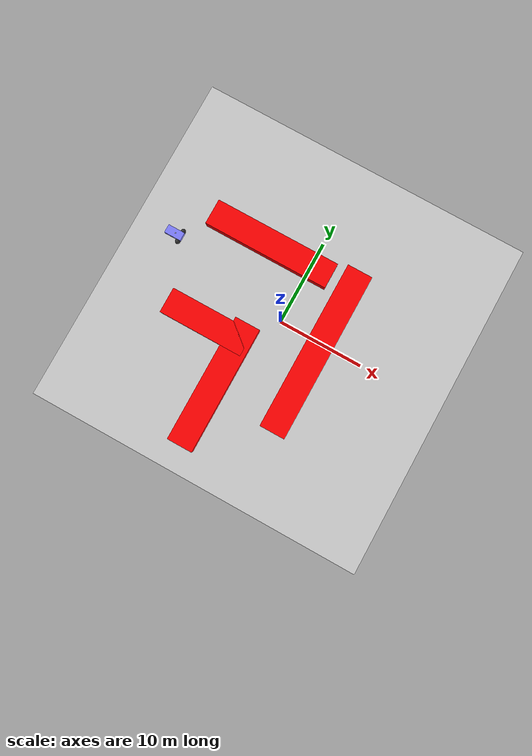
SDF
<?xml version="1.0" ?>
<!--
  You can echo lidar messages using:
    ign topic -e -t /lidar
-->
<sdf version="1.6">
  <world name="visualize_lidar_world">
    <physics name="1ms" type="ignored">
      <max_step_size>0.001</max_step_size>
      <real_time_factor>1.0</real_time_factor>
    </physics>
    <plugin
      filename="libignition-gazebo-physics-system.so"
      name="ignition::gazebo::systems::Physics">
    </plugin>
    <plugin
      filename="libignition-gazebo-sensors-system.so"
      name="ignition::gazebo::systems::Sensors">
      <render_engine>ogre2</render_engine>
    </plugin>
    <plugin
      filename="libignition-gazebo-scene-broadcaster-system.so"
      name="ignition::gazebo::systems::SceneBroadcaster">
    </plugin>

    <gui fullscreen="0">

      <!-- 3D scene -->
      <plugin filename="GzScene3D" name="3D View">
        <ignition-gui>
          <title>3D View</title>
          <property type="bool" key="showTitleBar">false</property>
          <property type="string" key="state">docked</property>
        </ignition-gui>

        <engine>ogre2</engine>
        <scene>scene</scene>
        <ambient_light>0.4 0.4 0.4</ambient_light>
        <background_color>0.8 0.8 0.8</background_color>
        <camera_pose>-6 0 20 0 1.57 0</camera_pose>
      </plugin>

      <!-- World control -->
      <plugin filename="WorldControl" name="World control">
        <ignition-gui>
          <title>World control</title>
          <property type="bool" key="showTitleBar">false</property>
          <property type="bool" key="resizable">false</property>
          <property type="double" key="height">72</property>
          <property type="double" key="width">121</property>
          <property type="double" key="z">1</property>

          <property type="string" key="state">floating</property>
          <anchors target="3D View">
            <line own="left" target="left"/>
            <line own="bottom" target="bottom"/>
          </anchors>
        </ignition-gui>

        <play_pause>true</play_pause>
        <step>true</step>
        <start_paused>false</start_paused>
        <service>/world/visualize_lidar_world/control</service>
        <stats_topic>/world/visualize_lidar_world/stats</stats_topic>

      </plugin>

      <!-- World statistics -->
      <plugin filename="WorldStats" name="World stats">
        <ignition-gui>
          <title>World stats</title>
          <property type="bool" key="showTitleBar">false</property>
          <property type="bool" key="resizable">false</property>
          <property type="double" key="height">110</property>
          <property type="double" key="width">290</property>
          <property type="double" key="z">1</property>

          <property type="string" key="state">floating</property>
          <anchors target="3D View">
            <line own="right" target="right"/>
            <line own="bottom" target="bottom"/>
          </anchors>
        </ignition-gui>

        <sim_time>true</sim_time>
        <real_time>true</real_time>
        <real_time_factor>true</real_time_factor>
        <iterations>true</iterations>
        <topic>/world/visualize_lidar_world/stats</topic>
      </plugin>
      <plugin filename="VisualizeLidar" name="Visualize Lidar">
        <ignition-gui>
          <property key="state" type="string">docked</property>
        </ignition-gui>
      </plugin>
    </gui>

    <light type="directional" name="sun">
      <cast_shadows>true</cast_shadows>
      <pose>0 0 10 0 0 0</pose>
      <diffuse>0.8 0.8 0.8 1</diffuse>
      <specular>0.2 0.2 0.2 1</specular>
      <attenuation>
        <range>1000</range>
        <constant>0.9</constant>
        <linear>0.01</linear>
        <quadratic>0.001</quadratic>
      </attenuation>
      <direction>-0.5 0.1 -0.9</direction>
    </light>

    <model name="ground_plane">
      <static>true</static>
      <link name="link">
        <collision name="collision">
          <geometry>
            <box>
              <size>40 40 0.1</size>
            </box>
          </geometry>
        </collision>
        <visual name="visual">
          <geometry>
            <box>
              <size>40 40 0.1</size>
            </box>
          </geometry>
          <material>
            <ambient>0.8 0.8 0.8 1</ambient>
            <diffuse>0.8 0.8 0.8 1</diffuse>
            <specular>0.8 0.8 0.8 1</specular>
          </material>
        </visual>
      </link>
    </model>

    <model name="box1">
      <pose>5 -1 0.5 0 0 0</pose>
      <link name="box1_link">
        <inertial>
          <inertia>
            <ixx>1</ixx>
            <ixy>0</ixy>
            <ixz>0</ixz>
            <iyy>1</iyy>
            <iyz>0</iyz>
            <izz>1</izz>
          </inertia>
          <mass>1.0</mass>
        </inertial>
        <collision name="box1_collision">
          <geometry>
            <box>
              <size>3 20 2</size>
            </box>
          </geometry>
        </collision>

        <visual name="box1_visual">
          <geometry>
            <box>
              <size>3 20 2</size>
            </box>
          </geometry>
          <material>
            <ambient>1 0 0 1</ambient>
            <diffuse>1 0 0 1</diffuse>
            <specular>1 0 0 1</specular>
          </material>
        </visual>
      </link>
    </model>

        <model name="box2"> <!-- A random red box -->
      <pose>-5 7 0.5 0 0 1.5708</pose>
      <link name="box2_link">
        <inertial>
          <inertia>
            <ixx>1</ixx>
            <ixy>0</ixy>
            <ixz>0</ixz>
            <iyy>1</iyy>
            <iyz>0</iyz>
            <izz>1</izz>
          </inertia>
          <mass>1.0</mass>
        </inertial>
        <collision name="box2_collision">
          <geometry>
            <box>
              <size>3 15 2</size>
            </box>
          </geometry>
        </collision>

        <visual name="box2_visual">
          <geometry>
            <box>
              <size>3 15 2</size>
            </box>
          </geometry>
          <material>
            <ambient>1 0 0 1</ambient>
            <diffuse>1 0 0 1</diffuse>
            <specular>1 0 0 1</specular>
          </material>
        </visual>
      </link>
    </model>

     <model name="box3"> <!-- A random red box -->
      <pose>-7 -4 0.5 0 0 1.5708</pose>
      <link name="box3_link">
        <inertial>
          <inertia>
            <ixx>1</ixx>
            <ixy>0</ixy>
            <ixz>0</ixz>
            <iyy>1</iyy>
            <iyz>0</iyz>
            <izz>1</izz>
          </inertia>
          <mass>1.0</mass>
        </inertial>
        <collision name="box3_collision">
          <geometry>
            <box>
              <size>3 10 2</size>
            </box>
          </geometry>
        </collision>

        <visual name="box3_visual">
          <geometry>
            <box>
              <size>3 10 2</size>
            </box>
          </geometry>
          <material>
            <ambient>1 0 0 1</ambient>
            <diffuse>1 0 0 1</diffuse>
            <specular>1 0 0 1</specular>
          </material>
        </visual>
      </link>
    </model>

    <model name="box4">
      <pose>-3 -9.5 0.5 0 0 0</pose>
      <link name="box4_link">
        <inertial>
          <inertia>
            <ixx>1</ixx>
            <ixy>0</ixy>
            <ixz>0</ixz>
            <iyy>1</iyy>
            <iyz>0</iyz>
            <izz>1</izz>
          </inertia>
          <mass>1.0</mass>
        </inertial>
        <collision name="box4_collision">
          <geometry>
            <box>
              <size>3 15 2</size>
            </box>
          </geometry>
        </collision>

        <visual name="box4_visual">
          <geometry>
            <box>
              <size>3 15 2</size>
            </box>
          </geometry>
          <material>
            <ambient>1 0 0 1</ambient>
            <diffuse>1 0 0 1</diffuse>
            <specular>1 0 0 1</specular>
          </material>
        </visual>
      </link>
    </model>

    <!--NEW-->

    <model name='simulated_vehicle'> <!-- The main car -->
      <pose>-15 3 0.325 0 0 0.0</pose>
      <link name='chassis'>
        <pose>-0.151427 -0 0.175 0 -0 0</pose>
        <inertial>
          <mass>1.14395</mass>
          <inertia>
            <ixx>0.126164</ixx>
            <ixy>0</ixy>
            <ixz>0</ixz>
            <iyy>0.416519</iyy>
            <iyz>0</iyz>
            <izz>0.481014</izz>
          </inertia>
        </inertial>
        <visual name='visual'>
          <geometry>
            <box>
              <size>2.01142 1 0.568726</size>
            </box>
          </geometry>
          <material>
            <ambient>0.5 0.5 1.0 1</ambient>
            <diffuse>0.5 0.5 1.0 1</diffuse>
            <specular>0.0 0.0 1.0 1</specular>
          </material>
        </visual>
        <collision name='collision'>
          <geometry>
            <box>
              <size>2.01142 1 0.568726</size>
            </box>
          </geometry>
        </collision>
      </link>

      <link name="lidar_link">
        <pose>0 0 0.5 0 0 0</pose>
        <inertial>
          <mass>0.1</mass>
          <inertia>
            <ixx>0.000166667</ixx>
            <iyy>0.000166667</iyy>
            <izz>0.000166667</izz>
          </inertia>
        </inertial>
        <collision name="collision">
          <geometry>
            <box>
              <size>0.1 0.1 0.1</size>
            </box>
          </geometry>
        </collision>
        <visual name="visual">
          <geometry>
            <box>
              <size>0.1 0.1 0.1</size>
            </box>
          </geometry>
        </visual>
        <sensor name='gpu_lidaar' type='gpu_lidar'>
          <topic>lidar</topic>
          <update_rate>10</update_rate>
          <lidar>
            <scan>
              <horizontal>
                <samples>640</samples>
                <resolution>1</resolution>
                <min_angle>-1.396263</min_angle>
                <max_angle>1.396263</max_angle>
              </horizontal>
              <vertical>
                <samples>16</samples>
                <resolution>1</resolution>
                <min_angle>-0.261799</min_angle>
                <max_angle>0.261799</max_angle>
              </vertical>
            </scan>
            <range>
              <min>0.08</min>
              <max>10.0</max>
              <resolution>0.01</resolution>
            </range>
          </lidar>
          <alwaysOn>1</alwaysOn>
          <visualize>true</visualize>
        </sensor>
      </link>

      <link name='left_wheel'>
        <pose>0.554283 0.625029 -0.025 -1.5707 0 0</pose>
        <inertial>
          <mass>2</mass>
          <inertia>
            <ixx>0.145833</ixx>
            <ixy>0</ixy>
            <ixz>0</ixz>
            <iyy>0.145833</iyy>
            <iyz>0</iyz>
            <izz>0.125</izz>
          </inertia>
        </inertial>
        <visual name='visual'>
          <geometry>
            <sphere>
              <radius>0.3</radius>
            </sphere>
          </geometry>
          <material>
            <ambient>0.2 0.2 0.2 1</ambient>
            <diffuse>0.2 0.2 0.2 1</diffuse>
            <specular>0.2 0.2 0.2 1</specular>
          </material>
        </visual>
        <collision name='collision'>
          <geometry>
            <sphere>
              <radius>0.3</radius>
            </sphere>
          </geometry>
        </collision>
      </link>

      <link name='right_wheel'>
        <pose>0.554282 -0.625029 -0.025 -1.5707 0 0</pose>
        <inertial>
          <mass>2</mass>
          <inertia>
            <ixx>0.145833</ixx>
            <ixy>0</ixy>
            <ixz>0</ixz>
            <iyy>0.145833</iyy>
            <iyz>0</iyz>
            <izz>0.125</izz>
          </inertia>
        </inertial>
        <visual name='visual'>
          <geometry>
            <sphere>
              <radius>0.3</radius>
            </sphere>
          </geometry>
          <material>
            <ambient>0.2 0.2 0.2 1</ambient>
            <diffuse>0.2 0.2 0.2 1</diffuse>
            <specular>0.2 0.2 0.2 1</specular>
          </material>
        </visual>
        <collision name='collision'>
          <geometry>
            <sphere>
              <radius>0.3</radius>
            </sphere>
          </geometry>
        </collision>
      </link>

      <link name='caster'>
        <pose>-0.957138 -0 -0.125 0 -0 0</pose>
        <inertial>
          <mass>1</mass>
          <inertia>
            <ixx>0.1</ixx>
            <ixy>0</ixy>
            <ixz>0</ixz>
            <iyy>0.1</iyy>
            <iyz>0</iyz>
            <izz>0.1</izz>
          </inertia>
        </inertial>
        <visual name='visual'>
          <geometry>
            <sphere>
              <radius>0.2</radius>
            </sphere>
          </geometry>
          <material>
            <ambient>0.2 0.2 0.2 1</ambient>
            <diffuse>0.2 0.2 0.2 1</diffuse>
            <specular>0.2 0.2 0.2 1</specular>
          </material>
        </visual>
        <collision name='collision'>
          <geometry>
            <sphere>
              <radius>0.2</radius>
            </sphere>
          </geometry>
        </collision>
      </link>

      <joint name='lidar_sensor_joint' type='fixed'>
        <parent>chassis</parent>
        <child>lidar_link</child>
      </joint>

      <joint name='left_wheel_joint' type='revolute'>
        <parent>chassis</parent>
        <child>left_wheel</child>
        <axis>
          <xyz>0 0 1</xyz>
          <limit>
            <lower>-1.79769e+308</lower>
            <upper>1.79769e+308</upper>
          </limit>
        </axis>
      </joint>

      <joint name='right_wheel_joint' type='revolute'>
        <parent>chassis</parent>
        <child>right_wheel</child>
        <axis>
          <xyz>0 0 1</xyz>
          <limit>
            <lower>-1.79769e+308</lower>
            <upper>1.79769e+308</upper>
          </limit>
        </axis>
      </joint>

      <joint name='caster_wheel' type='ball'>
        <parent>chassis</parent>
        <child>caster</child>
      </joint>

      <plugin
        filename="libignition-gazebo-diff-drive-system.so"
        name="ignition::gazebo::systems::DiffDrive">
        <left_joint>left_wheel_joint</left_joint>
        <right_joint>right_wheel_joint</right_joint>
        <wheel_separation>1.25</wheel_separation>
        <wheel_radius>0.3</wheel_radius>
        <odom_publish_frequency>1</odom_publish_frequency>
      </plugin>
    </model>
  </world>
</sdf>
